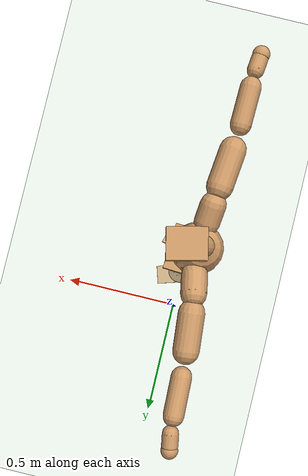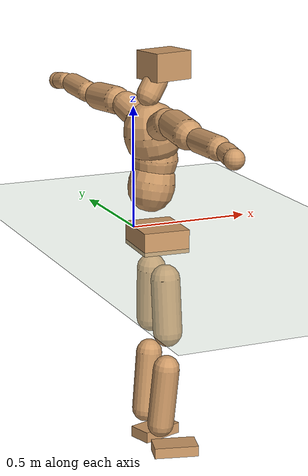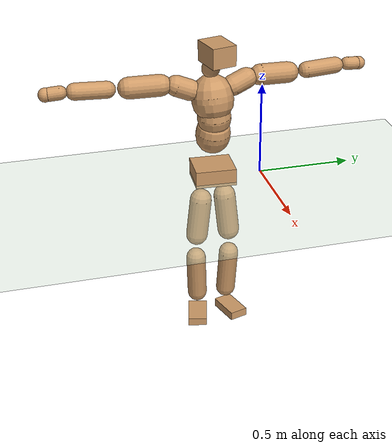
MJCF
<mujoco model="humanoid">
  <compiler coordinate="local" angle="radian"/>
  <default>
    <joint damping="0.0" armature="0.01" stiffness="0.0" limited="true"/>
    <geom conaffinity="1" condim="3" contype="7" margin="0.001" rgba="0.8 0.6 .4 1"/>
  </default>
  <asset>
    <texture type="skybox" builtin="gradient" rgb1=".4 .5 .6" rgb2="0 0 0" width="100" height="100"/>
    <texture builtin="flat" height="1278" mark="cross" markrgb="1 1 1" name="texgeom" random="0.01" rgb1="0.8 0.6 0.4" rgb2="0.8 0.6 0.4" type="cube" width="127"/>
    <texture builtin="checker" height="100" name="texplane" rgb1="0 0 0" rgb2="0.8 0.8 0.8" type="2d" width="100"/>
    <material name="MatPlane" reflectance="0.5" shininess="1" specular="1" texrepeat="60 60" texture="texplane"/>
    <material name="geom" texture="texgeom" texuniform="true"/>
  </asset>
  <worldbody>
    <light cutoff="100" diffuse="1 1 1" dir="-0 0 -1.3" directional="true" exponent="1" pos="0 0 1.3" specular=".1 .1 .1"/>
    <geom conaffinity="1" condim="3" name="floor" pos="0 0 0" rgba="0.8 0.9 0.8 1" size="100 100 .2" type="plane" material="MatPlane"/>
    <body name="Pelvis" pos="-0.0011 -0.2618 0.0348">
      <freejoint name="Pelvis"/>
      <geom type="box" contype="1" conaffinity="1" density="500" pos="-0.0095 0.0005 -0.0074" size="0.0932 0.1083 0.046" quat="0.9996 0.0000 0.0000 -0.0272" name="Pelvis"/>
      <body name="L_Hip" pos="-0.0086 0.058 -0.0832">
        <joint name="L_Hip_x" type="hinge" pos="0 0 0" axis="1 0 0" stiffness="800" damping="80" armature="0.02" range="-180.0000 180.0000"/>
        <joint name="L_Hip_y" type="hinge" pos="0 0 0" axis="0 1 0" stiffness="800" damping="80" armature="0.02" range="-180.0000 180.0000"/>
        <joint name="L_Hip_z" type="hinge" pos="0 0 0" axis="0 0 1" stiffness="800" damping="80" armature="0.02" range="-180.0000 180.0000"/>
        <geom type="capsule" contype="1" conaffinity="1" density="500" fromto="0.0021 0.0073 -0.0712 0.0086 0.0293 -0.2849" size="0.0583" name="L_Hip"/>
        <body name="L_Knee" pos="0.0107 0.0366 -0.3561">
          <joint name="L_Knee_x" type="hinge" pos="0 0 0" axis="1 0 0" stiffness="800" damping="80" armature="0.02" range="-180.0000 180.0000"/>
          <joint name="L_Knee_y" type="hinge" pos="0 0 0" axis="0 1 0" stiffness="800" damping="80" armature="0.02" range="-180.0000 180.0000"/>
          <joint name="L_Knee_z" type="hinge" pos="0 0 0" axis="0 0 1" stiffness="800" damping="80" armature="0.02" range="-180.0000 180.0000"/>
          <geom type="capsule" contype="1" conaffinity="1" density="500" fromto="-0.0075 -0.0031 -0.0806 -0.0301 -0.0125 -0.3225" size="0.0528" name="L_Knee"/>
          <body name="L_Ankle" pos="-0.0376 -0.0156 -0.4031">
            <joint name="L_Ankle_x" type="hinge" pos="0 0 0" axis="1 0 0" stiffness="800" damping="80" armature="0.02" range="-180.0000 180.0000"/>
            <joint name="L_Ankle_y" type="hinge" pos="0 0 0" axis="0 1 0" stiffness="800" damping="80" armature="0.02" range="-180.0000 180.0000"/>
            <joint name="L_Ankle_z" type="hinge" pos="0 0 0" axis="0 0 1" stiffness="800" damping="80" armature="0.02" range="-180.0000 180.0000"/>
            <geom type="box" contype="1" conaffinity="1" density="500" pos="0.0602 0.0184 -0.0287" size="0.0869 0.0492 0.0224" quat="0.9890 0.0000 0.0000 0.1479" name="L_Ankle"/>
            <body name="L_Toe" pos="0.1203 0.0368 -0.0575">
              <joint name="L_Toe_x" type="hinge" pos="0 0 0" axis="1 0 0" stiffness="500" damping="50" armature="0.02" range="-180.0000 180.0000"/>
              <joint name="L_Toe_y" type="hinge" pos="0 0 0" axis="0 1 0" stiffness="500" damping="50" armature="0.02" range="-180.0000 180.0000"/>
              <joint name="L_Toe_z" type="hinge" pos="0 0 0" axis="0 0 1" stiffness="500" damping="50" armature="0.02" range="-180.0000 180.0000"/>
              <geom type="box" contype="1" conaffinity="1" density="500" pos="0.0000 0.0000 0.0279" size="0.001 0.0024 0.0011" quat="0.9882 0.0000 0.0000 0.1530" name="L_Toe"/>
            </body>
          </body>
        </body>
      </body>
      <body name="R_Hip" pos="-0.0039 -0.0593 -0.0926">
        <joint name="R_Hip_x" type="hinge" pos="0 0 0" axis="1 0 0" stiffness="800" damping="80" armature="0.02" range="-180.0000 180.0000"/>
        <joint name="R_Hip_y" type="hinge" pos="0 0 0" axis="0 1 0" stiffness="800" damping="80" armature="0.02" range="-180.0000 180.0000"/>
        <joint name="R_Hip_z" type="hinge" pos="0 0 0" axis="0 0 1" stiffness="800" damping="80" armature="0.02" range="-180.0000 180.0000"/>
        <geom type="capsule" contype="1" conaffinity="1" density="500" fromto="-0.0001 -0.0077 -0.0715 -0.0004 -0.0308 -0.2858" size="0.058" name="R_Hip"/>
        <body name="R_Knee" pos="-0.0005 -0.0386 -0.3573">
          <joint name="R_Knee_x" type="hinge" pos="0 0 0" axis="1 0 0" stiffness="800" damping="80" armature="0.02" range="-180.0000 180.0000"/>
          <joint name="R_Knee_y" type="hinge" pos="0 0 0" axis="0 1 0" stiffness="800" damping="80" armature="0.02" range="-180.0000 180.0000"/>
          <joint name="R_Knee_z" type="hinge" pos="0 0 0" axis="0 0 1" stiffness="800" damping="80" armature="0.02" range="-180.0000 180.0000"/>
          <geom type="capsule" contype="1" conaffinity="1" density="500" fromto="-0.0067 0.0038 -0.0794 -0.0269 0.0152 -0.3178" size="0.0531" name="R_Knee"/>
          <body name="R_Ankle" pos="-0.0336 0.019 -0.3972">
            <joint name="R_Ankle_x" type="hinge" pos="0 0 0" axis="1 0 0" stiffness="800" damping="80" armature="0.02" range="-180.0000 180.0000"/>
            <joint name="R_Ankle_y" type="hinge" pos="0 0 0" axis="0 1 0" stiffness="800" damping="80" armature="0.02" range="-180.0000 180.0000"/>
            <joint name="R_Ankle_z" type="hinge" pos="0 0 0" axis="0 0 1" stiffness="800" damping="80" armature="0.02" range="-180.0000 180.0000"/>
            <geom type="box" contype="1" conaffinity="1" density="500" pos="0.0638 -0.0165 -0.0302" size="0.0892 0.0509 0.0217" quat="0.9920 0.0000 0.0000 -0.1260" name="R_Ankle"/>
            <body name="R_Toe" pos="0.1277 -0.033 -0.0603">
              <joint name="R_Toe_x" type="hinge" pos="0 0 0" axis="1 0 0" stiffness="500" damping="50" armature="0.02" range="-180.0000 180.0000"/>
              <joint name="R_Toe_y" type="hinge" pos="0 0 0" axis="0 1 0" stiffness="500" damping="50" armature="0.02" range="-180.0000 180.0000"/>
              <joint name="R_Toe_z" type="hinge" pos="0 0 0" axis="0 0 1" stiffness="500" damping="50" armature="0.02" range="-180.0000 180.0000"/>
              <geom type="box" contype="1" conaffinity="1" density="500" pos="0.0000 0.0000 0.0303" size="0.0012 0.0025 0.0011" quat="0.9931 0.0000 0.0000 -0.1170" name="R_Toe"/>
            </body>
          </body>
        </body>
      </body>
      <body name="Torso" pos="-0.0444 0.0044 0.1314">
        <joint name="Torso_x" type="hinge" pos="0 0 0" axis="1 0 0" stiffness="1000" damping="100" armature="0.02" range="-180.0000 180.0000"/>
        <joint name="Torso_y" type="hinge" pos="0 0 0" axis="0 1 0" stiffness="1000" damping="100" armature="0.02" range="-180.0000 180.0000"/>
        <joint name="Torso_z" type="hinge" pos="0 0 0" axis="0 0 1" stiffness="1000" damping="100" armature="0.02" range="-180.0000 180.0000"/>
        <geom type="capsule" contype="1" conaffinity="1" density="500" fromto="0.0164 0.0036 0.0867 0.0109 0.0024 0.0578" size="0.0922" name="Torso"/>
        <body name="Spine" pos="0.0273 0.006 0.1445">
          <joint name="Spine_x" type="hinge" pos="0 0 0" axis="1 0 0" stiffness="1000" damping="100" armature="0.02" range="-180.0000 180.0000"/>
          <joint name="Spine_y" type="hinge" pos="0 0 0" axis="0 1 0" stiffness="1000" damping="100" armature="0.02" range="-180.0000 180.0000"/>
          <joint name="Spine_z" type="hinge" pos="0 0 0" axis="0 0 1" stiffness="1000" damping="100" armature="0.02" range="-180.0000 180.0000"/>
          <geom type="capsule" contype="1" conaffinity="1" density="500" fromto="0.0024 -0.0016 0.0347 0.0016 -0.0011 0.0231" size="0.0897" name="Spine"/>
          <body name="Chest" pos="0.004 -0.0026 0.0578">
            <joint name="Chest_x" type="hinge" pos="0 0 0" axis="1 0 0" stiffness="1000" damping="100" armature="0.02" range="-180.0000 180.0000"/>
            <joint name="Chest_y" type="hinge" pos="0 0 0" axis="0 1 0" stiffness="1000" damping="100" armature="0.02" range="-180.0000 180.0000"/>
            <joint name="Chest_z" type="hinge" pos="0 0 0" axis="0 0 1" stiffness="1000" damping="100" armature="0.02" range="-180.0000 180.0000"/>
            <geom type="capsule" contype="1" conaffinity="1" density="500" fromto="-0.0191 -0.0050 0.0888 -0.0128 -0.0033 0.0592" size="0.1108" name="Chest"/>
            <body name="Neck" pos="-0.0429 -0.0119 0.2131">
              <joint name="Neck_x" type="hinge" pos="0 0 0" axis="1 0 0" stiffness="500" damping="50" armature="0.02" range="-180.0000 180.0000"/>
              <joint name="Neck_y" type="hinge" pos="0 0 0" axis="0 1 0" stiffness="500" damping="50" armature="0.02" range="-180.0000 180.0000"/>
              <joint name="Neck_z" type="hinge" pos="0 0 0" axis="0 0 1" stiffness="500" damping="50" armature="0.02" range="-180.0000 180.0000"/>
              <geom type="capsule" contype="1" conaffinity="1" density="500" fromto="0.0104 0.0021 0.0165 0.0416 0.0083 0.0661" size="0.0478" name="Neck"/>
              <body name="Head" pos="0.052 0.0104 0.0826">
                <joint name="Head_x" type="hinge" pos="0 0 0" axis="1 0 0" stiffness="500" damping="50" armature="0.02" range="-180.0000 180.0000"/>
                <joint name="Head_y" type="hinge" pos="0 0 0" axis="0 1 0" stiffness="500" damping="50" armature="0.02" range="-180.0000 180.0000"/>
                <joint name="Head_z" type="hinge" pos="0 0 0" axis="0 0 1" stiffness="500" damping="50" armature="0.02" range="-180.0000 180.0000"/>
                <geom type="box" contype="1" conaffinity="1" density="500" pos="0.0270 0.0062 0.0423" size="0.0817 0.0654 0.0549" quat="0.9937 0.0000 0.0000 0.1125" name="Head"/>
              </body>
            </body>
            <body name="L_Thorax" pos="-0.0252 0.0793 0.1164">
              <joint name="L_Thorax_x" type="hinge" pos="0 0 0" axis="1 0 0" stiffness="500" damping="50" armature="0.02" range="-180.0000 180.0000"/>
              <joint name="L_Thorax_y" type="hinge" pos="0 0 0" axis="0 1 0" stiffness="500" damping="50" armature="0.02" range="-180.0000 180.0000"/>
              <joint name="L_Thorax_z" type="hinge" pos="0 0 0" axis="0 0 1" stiffness="500" damping="50" armature="0.02" range="-180.0000 180.0000"/>
              <geom type="capsule" contype="1" conaffinity="1" density="500" fromto="-0.0049 0.0265 0.0095 -0.0195 0.1061 0.0379" size="0.0555" name="L_Thorax"/>
              <body name="L_Shoulder" pos="-0.0244 0.1326 0.0473">
                <joint name="L_Shoulder_x" type="hinge" pos="0 0 0" axis="1 0 0" stiffness="500" damping="50" armature="0.02" range="-720.0000 720.0000"/>
                <joint name="L_Shoulder_y" type="hinge" pos="0 0 0" axis="0 1 0" stiffness="500" damping="50" armature="0.02" range="-720.0000 720.0000"/>
                <joint name="L_Shoulder_z" type="hinge" pos="0 0 0" axis="0 0 1" stiffness="500" damping="50" armature="0.02" range="-720.0000 720.0000"/>
                <geom type="capsule" contype="1" conaffinity="1" density="500" fromto="-0.0048 0.0524 -0.0026 -0.0191 0.2095 -0.0105" size="0.0561" name="L_Shoulder"/>
                <body name="L_Elbow" pos="-0.0238 0.2619 -0.0131">
                  <joint name="L_Elbow_x" type="hinge" pos="0 0 0" axis="1 0 0" stiffness="500" damping="50" armature="0.02" range="-720.0000 720.0000"/>
                  <joint name="L_Elbow_y" type="hinge" pos="0 0 0" axis="0 1 0" stiffness="500" damping="50" armature="0.02" range="-720.0000 720.0000"/>
                  <joint name="L_Elbow_z" type="hinge" pos="0 0 0" axis="0 0 1" stiffness="500" damping="50" armature="0.02" range="-720.0000 720.0000"/>
                  <geom type="capsule" contype="1" conaffinity="1" density="500" fromto="-0.0017 0.0538 0.0027 -0.0067 0.2153 0.0110" size="0.0436" name="L_Elbow"/>
                  <body name="L_Wrist" pos="-0.0084 0.2692 0.0137">
                    <joint name="L_Wrist_x" type="hinge" pos="0 0 0" axis="1 0 0" stiffness="300" damping="30" armature="0.02" range="-180.0000 180.0000"/>
                    <joint name="L_Wrist_y" type="hinge" pos="0 0 0" axis="0 1 0" stiffness="300" damping="30" armature="0.02" range="-180.0000 180.0000"/>
                    <joint name="L_Wrist_z" type="hinge" pos="0 0 0" axis="0 0 1" stiffness="300" damping="30" armature="0.02" range="-180.0000 180.0000"/>
                    <geom type="capsule" contype="1" conaffinity="1" density="500" fromto="-0.0031 0.0174 -0.0021 -0.0124 0.0697 -0.0082" size="0.0347" name="L_Wrist"/>
                    <body name="L_Hand" pos="-0.0155 0.0871 -0.0103">
                      <joint name="L_Hand_x" type="hinge" pos="0 0 0" axis="1 0 0" stiffness="300" damping="30" armature="0.02" range="-180.0000 180.0000"/>
                      <joint name="L_Hand_y" type="hinge" pos="0 0 0" axis="0 1 0" stiffness="300" damping="30" armature="0.02" range="-180.0000 180.0000"/>
                      <joint name="L_Hand_z" type="hinge" pos="0 0 0" axis="0 0 1" stiffness="300" damping="30" armature="0.02" range="-180.0000 180.0000"/>
                      <geom type="sphere" contype="1" conaffinity="1" density="500" size="0.0358" pos="0.0000 0.0000 0.0000" name="L_Hand"/>
                    </body>
                  </body>
                </body>
              </body>
            </body>
            <body name="R_Thorax" pos="-0.0276 -0.0923 0.1147">
              <joint name="R_Thorax_x" type="hinge" pos="0 0 0" axis="1 0 0" stiffness="500" damping="50" armature="0.02" range="-180.0000 180.0000"/>
              <joint name="R_Thorax_y" type="hinge" pos="0 0 0" axis="0 1 0" stiffness="500" damping="50" armature="0.02" range="-180.0000 180.0000"/>
              <joint name="R_Thorax_z" type="hinge" pos="0 0 0" axis="0 0 1" stiffness="500" damping="50" armature="0.02" range="-180.0000 180.0000"/>
              <geom type="capsule" contype="1" conaffinity="1" density="500" fromto="-0.0025 -0.0247 0.0096 -0.0098 -0.0988 0.0384" size="0.0555" name="R_Thorax"/>
              <body name="R_Shoulder" pos="-0.0123 -0.1236 0.048">
                <joint name="R_Shoulder_x" type="hinge" pos="0 0 0" axis="1 0 0" stiffness="500" damping="50" armature="0.02" range="-720.0000 720.0000"/>
                <joint name="R_Shoulder_y" type="hinge" pos="0 0 0" axis="0 1 0" stiffness="500" damping="50" armature="0.02" range="-720.0000 720.0000"/>
                <joint name="R_Shoulder_z" type="hinge" pos="0 0 0" axis="0 0 1" stiffness="500" damping="50" armature="0.02" range="-720.0000 720.0000"/>
                <geom type="capsule" contype="1" conaffinity="1" density="500" fromto="-0.0060 -0.0542 -0.0017 -0.0239 -0.2168 -0.0069" size="0.0571" name="R_Shoulder"/>
                <body name="R_Elbow" pos="-0.0299 -0.271 -0.0086">
                  <joint name="R_Elbow_x" type="hinge" pos="0 0 0" axis="1 0 0" stiffness="500" damping="50" armature="0.02" range="-720.0000 720.0000"/>
                  <joint name="R_Elbow_y" type="hinge" pos="0 0 0" axis="0 1 0" stiffness="500" damping="50" armature="0.02" range="-720.0000 720.0000"/>
                  <joint name="R_Elbow_z" type="hinge" pos="0 0 0" axis="0 0 1" stiffness="500" damping="50" armature="0.02" range="-720.0000 720.0000"/>
                  <geom type="capsule" contype="1" conaffinity="1" density="500" fromto="-0.0012 -0.0547 0.0019 -0.0050 -0.2189 0.0074" size="0.0447" name="R_Elbow"/>
                  <body name="R_Wrist" pos="-0.0062 -0.2736 0.0093">
                    <joint name="R_Wrist_x" type="hinge" pos="0 0 0" axis="1 0 0" stiffness="300" damping="30" armature="0.02" range="-180.0000 180.0000"/>
                    <joint name="R_Wrist_y" type="hinge" pos="0 0 0" axis="0 1 0" stiffness="300" damping="30" armature="0.02" range="-180.0000 180.0000"/>
                    <joint name="R_Wrist_z" type="hinge" pos="0 0 0" axis="0 0 1" stiffness="300" damping="30" armature="0.02" range="-180.0000 180.0000"/>
                    <geom type="capsule" contype="1" conaffinity="1" density="500" fromto="-0.0021 -0.0182 -0.0018 -0.0082 -0.0729 -0.0071" size="0.0361" name="R_Wrist"/>
                    <body name="R_Hand" pos="-0.0103 -0.0911 -0.0089">
                      <joint name="R_Hand_x" type="hinge" pos="0 0 0" axis="1 0 0" stiffness="300" damping="30" armature="0.02" range="-180.0000 180.0000"/>
                      <joint name="R_Hand_y" type="hinge" pos="0 0 0" axis="0 1 0" stiffness="300" damping="30" armature="0.02" range="-180.0000 180.0000"/>
                      <joint name="R_Hand_z" type="hinge" pos="0 0 0" axis="0 0 1" stiffness="300" damping="30" armature="0.02" range="-180.0000 180.0000"/>
                      <geom type="sphere" contype="1" conaffinity="1" density="500" size="0.0371" pos="0.0000 0.0000 0.0000" name="R_Hand"/>
                    </body>
                  </body>
                </body>
              </body>
            </body>
          </body>
        </body>
      </body>
    </body>
  </worldbody>
  <actuator>
    <motor name="L_Hip_x" joint="L_Hip_x" gear="500"/>
    <motor name="L_Hip_y" joint="L_Hip_y" gear="500"/>
    <motor name="L_Hip_z" joint="L_Hip_z" gear="500"/>
    <motor name="L_Knee_x" joint="L_Knee_x" gear="500"/>
    <motor name="L_Knee_y" joint="L_Knee_y" gear="500"/>
    <motor name="L_Knee_z" joint="L_Knee_z" gear="500"/>
    <motor name="L_Ankle_x" joint="L_Ankle_x" gear="500"/>
    <motor name="L_Ankle_y" joint="L_Ankle_y" gear="500"/>
    <motor name="L_Ankle_z" joint="L_Ankle_z" gear="500"/>
    <motor name="L_Toe_x" joint="L_Toe_x" gear="500"/>
    <motor name="L_Toe_y" joint="L_Toe_y" gear="500"/>
    <motor name="L_Toe_z" joint="L_Toe_z" gear="500"/>
    <motor name="R_Hip_x" joint="R_Hip_x" gear="500"/>
    <motor name="R_Hip_y" joint="R_Hip_y" gear="500"/>
    <motor name="R_Hip_z" joint="R_Hip_z" gear="500"/>
    <motor name="R_Knee_x" joint="R_Knee_x" gear="500"/>
    <motor name="R_Knee_y" joint="R_Knee_y" gear="500"/>
    <motor name="R_Knee_z" joint="R_Knee_z" gear="500"/>
    <motor name="R_Ankle_x" joint="R_Ankle_x" gear="500"/>
    <motor name="R_Ankle_y" joint="R_Ankle_y" gear="500"/>
    <motor name="R_Ankle_z" joint="R_Ankle_z" gear="500"/>
    <motor name="R_Toe_x" joint="R_Toe_x" gear="500"/>
    <motor name="R_Toe_y" joint="R_Toe_y" gear="500"/>
    <motor name="R_Toe_z" joint="R_Toe_z" gear="500"/>
    <motor name="Torso_x" joint="Torso_x" gear="500"/>
    <motor name="Torso_y" joint="Torso_y" gear="500"/>
    <motor name="Torso_z" joint="Torso_z" gear="500"/>
    <motor name="Spine_x" joint="Spine_x" gear="500"/>
    <motor name="Spine_y" joint="Spine_y" gear="500"/>
    <motor name="Spine_z" joint="Spine_z" gear="500"/>
    <motor name="Chest_x" joint="Chest_x" gear="500"/>
    <motor name="Chest_y" joint="Chest_y" gear="500"/>
    <motor name="Chest_z" joint="Chest_z" gear="500"/>
    <motor name="Neck_x" joint="Neck_x" gear="500"/>
    <motor name="Neck_y" joint="Neck_y" gear="500"/>
    <motor name="Neck_z" joint="Neck_z" gear="500"/>
    <motor name="Head_x" joint="Head_x" gear="500"/>
    <motor name="Head_y" joint="Head_y" gear="500"/>
    <motor name="Head_z" joint="Head_z" gear="500"/>
    <motor name="L_Thorax_x" joint="L_Thorax_x" gear="500"/>
    <motor name="L_Thorax_y" joint="L_Thorax_y" gear="500"/>
    <motor name="L_Thorax_z" joint="L_Thorax_z" gear="500"/>
    <motor name="L_Shoulder_x" joint="L_Shoulder_x" gear="500"/>
    <motor name="L_Shoulder_y" joint="L_Shoulder_y" gear="500"/>
    <motor name="L_Shoulder_z" joint="L_Shoulder_z" gear="500"/>
    <motor name="L_Elbow_x" joint="L_Elbow_x" gear="500"/>
    <motor name="L_Elbow_y" joint="L_Elbow_y" gear="500"/>
    <motor name="L_Elbow_z" joint="L_Elbow_z" gear="500"/>
    <motor name="L_Wrist_x" joint="L_Wrist_x" gear="500"/>
    <motor name="L_Wrist_y" joint="L_Wrist_y" gear="500"/>
    <motor name="L_Wrist_z" joint="L_Wrist_z" gear="500"/>
    <motor name="L_Hand_x" joint="L_Hand_x" gear="500"/>
    <motor name="L_Hand_y" joint="L_Hand_y" gear="500"/>
    <motor name="L_Hand_z" joint="L_Hand_z" gear="500"/>
    <motor name="R_Thorax_x" joint="R_Thorax_x" gear="500"/>
    <motor name="R_Thorax_y" joint="R_Thorax_y" gear="500"/>
    <motor name="R_Thorax_z" joint="R_Thorax_z" gear="500"/>
    <motor name="R_Shoulder_x" joint="R_Shoulder_x" gear="500"/>
    <motor name="R_Shoulder_y" joint="R_Shoulder_y" gear="500"/>
    <motor name="R_Shoulder_z" joint="R_Shoulder_z" gear="500"/>
    <motor name="R_Elbow_x" joint="R_Elbow_x" gear="500"/>
    <motor name="R_Elbow_y" joint="R_Elbow_y" gear="500"/>
    <motor name="R_Elbow_z" joint="R_Elbow_z" gear="500"/>
    <motor name="R_Wrist_x" joint="R_Wrist_x" gear="500"/>
    <motor name="R_Wrist_y" joint="R_Wrist_y" gear="500"/>
    <motor name="R_Wrist_z" joint="R_Wrist_z" gear="500"/>
    <motor name="R_Hand_x" joint="R_Hand_x" gear="500"/>
    <motor name="R_Hand_y" joint="R_Hand_y" gear="500"/>
    <motor name="R_Hand_z" joint="R_Hand_z" gear="500"/>
  </actuator>
  <contact>
    <exclude body1="Torso" body2="Chest"/>
    <exclude body1="Head" body2="Chest"/>
    <exclude body1="R_Knee" body2="R_Toe"/>
    <exclude body1="R_Knee" body2="L_Ankle"/>
    <exclude body1="R_Knee" body2="L_Toe"/>
    <exclude body1="L_Knee" body2="L_Toe"/>
    <exclude body1="L_Knee" body2="R_Ankle"/>
    <exclude body1="L_Knee" body2="R_Toe"/>
    <exclude body1="L_Shoulder" body2="Chest"/>
    <exclude body1="R_Shoulder" body2="Chest"/>
  </contact>
  <sensor/>
  <size njmax="700" nconmax="700"/>
</mujoco>
